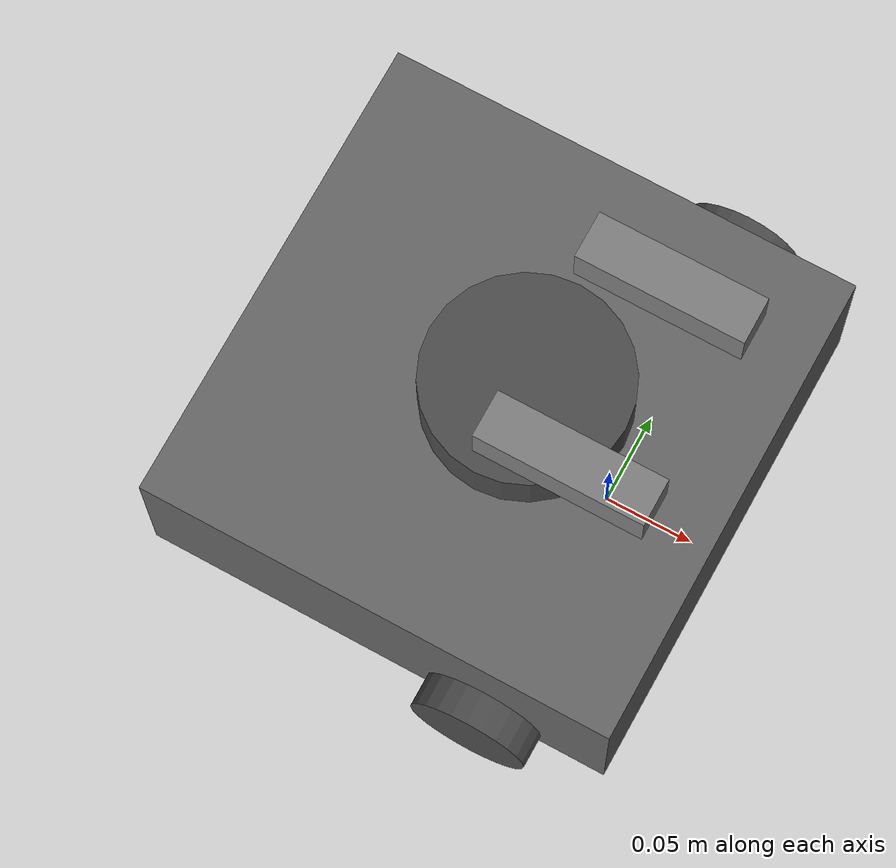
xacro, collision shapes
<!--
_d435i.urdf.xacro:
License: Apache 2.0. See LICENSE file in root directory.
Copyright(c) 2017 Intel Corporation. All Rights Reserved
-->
<?xml version="1.0" ?>
<robot name="turtlebot3_waffle_pi" xmlns:xacro="http://ros.org/wiki/xacro">
  <xacro:include filename="$(find mai_sim)/urdf/common_properties.xacro"/>
  <xacro:include filename="$(find mai_sim)/urdf/turtlebot3_waffle_pi.gazebo.xacro"/>

  <link name="base_footprint"/>

  <joint name="base_joint" type="fixed">
    <parent link="base_footprint"/>
    <child link="base_link" />
    <origin xyz="0 0 0.010" rpy="0 0 0"/>
  </joint>

  <link name="base_link">
    <visual>
      <origin xyz="-0.064 0 0.0" rpy="0 0 0"/>
      <geometry>
        <mesh filename="package://mai_sim/meshes/bases/waffle_pi_base.stl" scale="0.001 0.001 0.001"/>
      </geometry>
      <material name="light_black"/>
    </visual>

    <collision>
      <origin xyz="-0.064 0 0.047" rpy="0 0 0"/>
      <geometry>
        <box size="0.266 0.266 0.094"/>
      </geometry>
    </collision>

    <inertial>
      <origin xyz="0 0 0" rpy="0 0 0"/>
      <mass value="1.3729096e+00"/>
      <inertia ixx="8.7002718e-03" ixy="-4.7576583e-05" ixz="1.1160499e-04"
               iyy="8.6195418e-03" iyz="-3.5422299e-06"
               izz="1.4612727e-02" />
    </inertial>
  </link>

  <joint name="wheel_left_joint" type="continuous">
    <parent link="base_link"/>
    <child link="wheel_left_link"/>
    <origin xyz="0.0 0.144 0.023" rpy="-1.57 0 0"/>
    <axis xyz="0 0 1"/>
  </joint>

  <link name="wheel_left_link">
    <visual>
      <origin xyz="0 0 0" rpy="1.57 0 0"/>
      <geometry>
        <mesh filename="package://mai_sim/meshes/wheels/left_tire.stl" scale="0.001 0.001 0.001"/>
      </geometry>
      <material name="dark"/>
    </visual>

    <collision>
      <origin xyz="0 0 0" rpy="0 0 0"/>
      <geometry>
        <cylinder length="0.018" radius="0.033"/>
      </geometry>
    </collision>

    <inertial>
      <origin xyz="0 0 0" />
      <mass value="2.8498940e-02" />
      <inertia ixx="1.1175580e-05" ixy="-4.2369783e-11" ixz="-5.9381719e-09"
               iyy="1.1192413e-05" iyz="-1.4400107e-11"
               izz="2.0712558e-05" />
      </inertial>
  </link>

  <joint name="wheel_right_joint" type="continuous">
    <parent link="base_link"/>
    <child link="wheel_right_link"/>
    <origin xyz="0.0 -0.144 0.023" rpy="-1.57 0 0"/>
    <axis xyz="0 0 1"/>
  </joint>

  <link name="wheel_right_link">
    <visual>
      <origin xyz="0 0 0" rpy="1.57 0 0"/>
      <geometry>
        <mesh filename="package://mai_sim/meshes/wheels/right_tire.stl" scale="0.001 0.001 0.001"/>
      </geometry>
      <material name="dark"/>
    </visual>

    <collision>
      <origin xyz="0 0 0" rpy="0 0 0"/>
      <geometry>
        <cylinder length="0.018" radius="0.033"/>
      </geometry>
    </collision>

    <inertial>
      <origin xyz="0 0 0" />
      <mass value="2.8498940e-02" />
      <inertia ixx="1.1175580e-05" ixy="-4.2369783e-11" ixz="-5.9381719e-09"
               iyy="1.1192413e-05" iyz="-1.4400107e-11"
               izz="2.0712558e-05" />
      </inertial>
  </link>

  <joint name="caster_back_right_joint" type="fixed">
    <parent link="base_link"/>
    <child link="caster_back_right_link"/>
    <origin xyz="-0.177 -0.064 -0.004" rpy="-1.57 0 0"/>
  </joint>

  <link name="caster_back_right_link">
    <collision>
      <origin xyz="0 0.001 0" rpy="0 0 0"/>
      <geometry>
        <box size="0.030 0.009 0.020"/>
      </geometry>
    </collision>

    <inertial>
      <origin xyz="0 0 0" />
      <mass value="0.005" />
      <inertia ixx="0.001" ixy="0.0" ixz="0.0"
               iyy="0.001" iyz="0.0"
               izz="0.001" />
    </inertial>
  </link>

  <joint name="caster_back_left_joint" type="fixed">
    <parent link="base_link"/>
    <child link="caster_back_left_link"/>
    <origin xyz="-0.177 0.064 -0.004" rpy="-1.57 0 0"/>
  </joint>

  <link name="caster_back_left_link">
    <collision>
      <origin xyz="0 0.001 0" rpy="0 0 0"/>
      <geometry>
        <box size="0.030 0.009 0.020"/>
      </geometry>
    </collision>

    <inertial>
      <origin xyz="0 0 0" />
      <mass value="0.005" />
      <inertia ixx="0.001" ixy="0.0" ixz="0.0"
               iyy="0.001" iyz="0.0"
               izz="0.001" />
    </inertial>
  </link>

  <joint name="imu_joint" type="fixed">
    <parent link="base_link"/>
    <child link="imu_link"/>
    <origin xyz="0.0 0 0.068" rpy="0 0 0"/>
  </joint>

  <link name="imu_link"/>

  <joint name="scan_joint" type="fixed">
    <parent link="base_link"/>
    <child link="base_scan"/>
    <origin xyz="-0.064 0 0.122" rpy="0 0 0"/>
  </joint>

  <link name="base_scan">
    <visual>
      <origin xyz="0 0 0.0" rpy="0 0 0"/>
      <geometry>
        <mesh filename="package://mai_sim/meshes/sensors/lds.stl" scale="0.001 0.001 0.001"/>
      </geometry>
      <material name="dark"/>
    </visual>

    <collision>
      <origin xyz="0.015 0 -0.0065" rpy="0 0 0"/>
      <geometry>
        <cylinder length="0.0315" radius="0.055"/>
      </geometry>
    </collision>

    <inertial>
      <mass value="0.114" />
      <origin xyz="0 0 0" />
      <inertia ixx="0.001" ixy="0.0" ixz="0.0"
               iyy="0.001" iyz="0.0"
               izz="0.001" />
    </inertial>
  </link>

  <!-- d435i frame definition can be found at https://github.com/IntelRealSense/librealsense/blob/master/doc/d435i.md -->

  <xacro:arg name="use_nominal_extrinsics" default="false" />
  <xacro:include filename="$(find realsense2_description)/urdf/_d435i.urdf.xacro"/>

  <xacro:sensor_d435i parent="base_link" name="camera1" use_nominal_extrinsics="$(arg use_nominal_extrinsics)">
    <origin xyz="0 0.05 0.2" rpy="0.0 0.0 1.57079633"/>
  </xacro:sensor_d435i>

  <xacro:sensor_d435i parent="base_link" name="camera2" use_nominal_extrinsics="$(arg use_nominal_extrinsics)">
    <origin xyz="0.0 -0.05 0.2" rpy="0.0 0.0 -1.57079633"/>
  </xacro:sensor_d435i>
</robot>

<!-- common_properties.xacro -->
<robot name="xacro_properties" xmlns:xacro="http://ros.org/wiki/xacro">

  <!-- Init colour -->
  <material name="black">
      <color rgba="0.0 0.0 0.0 1.0"/>
  </material>

  <material name="dark">
    <color rgba="0.3 0.3 0.3 1.0"/>
  </material>
  <material name="light_black">
    <color rgba="0.4 0.4 0.4 1.0"/>
  </material>

  <material name="blue">
    <color rgba="0.0 0.0 0.8 1.0"/>
  </material>

  <material name="green">
    <color rgba="0.0 0.8 0.0 1.0"/>
  </material>

  <material name="grey">
    <color rgba="0.5 0.5 0.5 1.0"/>
  </material>

  <material name="orange">
    <color rgba="${255/255} ${108/255} ${10/255} 1.0"/>
  </material>

  <material name="brown">
    <color rgba="${222/255} ${207/255} ${195/255} 1.0"/>
  </material>

  <material name="red">
    <color rgba="0.8 0.0 0.0 1.0"/>
  </material>

  <material name="white">
    <color rgba="1.0 1.0 1.0 1.0"/>
  </material>
</robot>

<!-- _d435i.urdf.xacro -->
<robot name="sensor_d435i" xmlns:xacro="http://ros.org/wiki/xacro">
  <!--File includes-->
  <xacro:include filename="$(find mai_sim)/urdf/_d435i.gazebo.xacro"/>

  <xacro:macro name="sensor_d435i" params="parent
                                          name:=camera
                                          topics_ns:=camera
                                          visualize:=true
                                          align_depth:=false
                                          enable_pointCloud:=false
                                          unite_imu_method:=false
                                          accel_fps:=250
                                          gyro_fps:=400
                                          clip_distance:=-1.0
                                          depth_width:=1280
                                          depth_height:=720
                                          depth_fps:=30
                                          infra_width:=640
                                          infra_height:=480
                                          infra_fps:=30
                                          color_width:=1920
                                          color_height:=1080
                                          color_fps:=30
                                          *origin">
    <xacro:property name="M_PI" value="3.1415926535897931"/>

    <!-- The following values are approximate, and the camera node
     publishing TF values with actual calibrated camera extrinsic values -->
    <xacro:property name="d435i_cam_depth_to_left_ir_offset" value="0.0"/>
    <xacro:property name="d435i_cam_depth_to_right_ir_offset" value="-0.050"/>
    <xacro:property name="d435i_cam_depth_to_color_offset" value="0.015"/>

    <!-- The following values model the aluminum peripherial case for the
  	D435 camera, with the camera joint represented by the actual
  	peripherial camera tripod mount -->
    <xacro:property name="d435i_cam_width" value="0.090"/>
    <xacro:property name="d435i_cam_height" value="0.025"/>
    <xacro:property name="d435i_cam_depth" value="0.02505"/>
    <xacro:property name="d435i_cam_mount_from_center_offset" value="0.0149"/>

    <!-- The following offset is relative the the physical D435 camera peripherial
  	camera tripod mount -->
    <xacro:property name="d435i_cam_depth_px" value="${d435i_cam_mount_from_center_offset}"/>
    <xacro:property name="d435i_cam_depth_py" value="0.0175"/>
    <xacro:property name="d435i_cam_depth_pz" value="${d435i_cam_height/2}"/>

    <material name="${name}_aluminum">
	  <color rgba="0.5 0.5 0.5 1"/>
    </material>

    <!-- camera body, with origin at bottom screw mount -->
    <joint name="${name}_joint" type="fixed">
      <xacro:insert_block name="origin"/>
      <parent link="${parent}"/>
      <child link="${name}_bottom_screw_frame"/>
    </joint>
    <link name="${name}_bottom_screw_frame"/>

    <joint name="${name}_link_joint" type="fixed">
      <origin xyz="0 ${d435i_cam_depth_py} ${d435i_cam_depth_pz}" rpy="0 0 0"/>
      <parent link="${name}_bottom_screw_frame"/>
      <child link="${name}_link"/>
    </joint>

    <link name="${name}_link">
      <visual>
      <origin xyz="${d435i_cam_mount_from_center_offset} ${-d435i_cam_depth_py} 0" rpy="${M_PI/2} 0 ${M_PI/2}"/>
        <geometry>
          <mesh filename="package://realsense2_description/meshes/d435.dae"/>
        </geometry>
        <material name="${name}_aluminum"/>
      </visual>
      <collision>
        <origin xyz="0 ${-d435i_cam_depth_py} 0" rpy="0 0 0"/>
        <geometry>
        <box size="${d435i_cam_depth} ${d435i_cam_width} ${d435i_cam_height}"/>
        </geometry>
      </collision>
      <inertial>
        <!-- The following are not reliable values, and should not be used for modeling -->
        <mass value="0.564"/>
        <origin xyz="0 0 0"/>
        <inertia ixx="0.003881243" ixy="0.0" ixz="0.0" iyy="0.000498940" iyz="0.0" izz="0.003879257"/>
      </inertial>
    </link>

    <!-- camera depth joints and links -->
    <joint name="${name}_depth_joint" type="fixed">
      <origin xyz="0 0 0" rpy="0 0 0"/>
      <parent link="${name}_link"/>
      <child link="${name}_depth_frame"/>
    </joint>
    <link name="${name}_depth_frame"/>

    <joint name="${name}_depth_optical_joint" type="fixed">
      <origin xyz="0 0 0" rpy="${-M_PI/2} 0 ${-M_PI/2}"/>
      <parent link="${name}_depth_frame"/>
      <child link="${name}_depth_optical_frame"/>
    </joint>
    <link name="${name}_depth_optical_frame"/>

    <!-- camera left IR joints and links -->
    <joint name="${name}_left_ir_joint" type="fixed">
      <origin xyz="0 ${d435i_cam_depth_to_left_ir_offset} 0" rpy="0 0 0"/>
      <parent link="${name}_depth_frame"/>
      <child link="${name}_left_ir_frame"/>
    </joint>
    <link name="${name}_left_ir_frame"/>

    <joint name="${name}_left_ir_optical_joint" type="fixed">
      <origin xyz="0 0 0" rpy="${-M_PI/2} 0 ${-M_PI/2}"/>
      <parent link="${name}_left_ir_frame"/>
      <child link="${name}_left_ir_optical_frame"/>
    </joint>
    <link name="${name}_left_ir_optical_frame"/>

    <!-- camera right IR joints and links -->
    <joint name="${name}_right_ir_joint" type="fixed">
      <origin xyz="0 ${d435i_cam_depth_to_right_ir_offset} 0" rpy="0 0 0"/>
      <parent link="${name}_depth_frame"/>
      <child link="${name}_right_ir_frame"/>
    </joint>
    <link name="${name}_right_ir_frame"/>

    <joint name="${name}_right_ir_optical_joint" type="fixed">
      <origin xyz="0 0 0" rpy="${-M_PI/2} 0 ${-M_PI/2}"/>
      <parent link="${name}_right_ir_frame"/>
      <child link="${name}_right_ir_optical_frame"/>
    </joint>
    <link name="${name}_right_ir_optical_frame"/>

    <!-- camera color joints and links -->
    <joint name="${name}_color_joint" type="fixed">
      <origin xyz="0 ${d435i_cam_depth_to_color_offset} 0" rpy="0 0 0"/>
      <parent link="${name}_depth_frame"/>
      <child link="${name}_color_frame"/>
    </joint>
    <link name="${name}_color_frame"/>

    <joint name="${name}_color_optical_joint" type="fixed">
      <origin xyz="0 0 0" rpy="${-M_PI/2} 0 ${-M_PI/2}"/>
      <parent link="${name}_color_frame"/>
      <child link="${name}_color_optical_frame"/>
    </joint>
    <link name="${name}_color_optical_frame"/>

    <!-- camera accel joints and links -->
    <joint name="${name}_accel_joint" type="fixed">
      <origin xyz="-0.00174 0.00552 0.0176" rpy="0 0 0"/>
      <parent link="${name}_link"/>
      <child link="${name}_accel_frame"/>
    </joint>
    <link name="${name}_accel_frame"/>

    <joint name="${name}_accel_optical_joint" type="fixed">
      <origin xyz="0 0 0" rpy="${-M_PI/2} 0 ${-M_PI/2}"/>
      <parent link="${name}_accel_frame"/>
      <child link="${name}_accel_optical_frame"/>
    </joint>
    <link name="${name}_accel_optical_frame"/>

    <!-- camera gyro joints and links -->
    <joint name="${name}_gyro_joint" type="fixed">
      <origin xyz="-0.00174 0.00552 0.0176" rpy="0 0 0"/>
      <parent link="${name}_link"/>
      <child link="${name}_gyro_frame"/>
    </joint>
    <link name="${name}_gyro_frame"/>

    <joint name="${name}_gyro_optical_joint" type="fixed">
      <origin xyz="0 0 0" rpy="${-M_PI/2} 0 ${-M_PI/2}"/>
      <parent link="${name}_gyro_frame"/>
      <child link="${name}_gyro_optical_frame"/>
    </joint>
    <link name="${name}_gyro_optical_frame"/>

    <!-- Realsense Gazebo Plugin -->
    <xacro:gazebo_d435i camera_name="${name}"
                        topics_ns="${topics_ns}"
                        reference_link="${name}_link"

                        depth_optical_frame="${name}_depth_optical_frame"
                        depth_width="${depth_width}"
                        depth_height="${depth_height}"
                        depth_fps="${depth_fps}"

                        color_optical_frame="${name}_color_optical_frame"
                        color_width="${color_width}"
                        color_height="${color_height}"
                        color_fps="${color_fps}"

                        infrared1_optical_frame="${name}_left_ir_optical_frame"
                        infrared2_optical_frame="${name}_right_ir_optical_frame"
                        infra_width="${infra_width}"
                        infra_height="${infra_height}"
                        infra_fps="${infra_fps}"

                        accel_optical_frame="${name}_accel_optical_frame"
                        gyro_optical_frame="${name}_gyro_optical_frame"
                        accel_fps="${accel_fps}"
                        gyro_fps="${gyro_fps}"

                        enable_pointCloud="${enable_pointCloud}"
                        unite_imu_method="${unite_imu_method}"
                        clip_distance="${clip_distance}"
                        align_depth="${align_depth}"
                        visualize="${visualize}"
    />

  </xacro:macro>
</robot>
